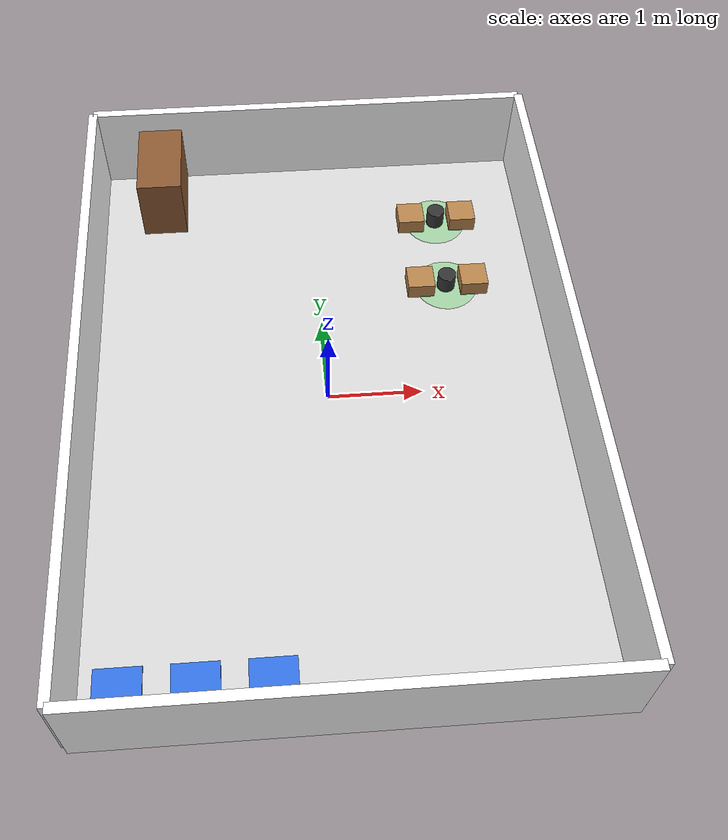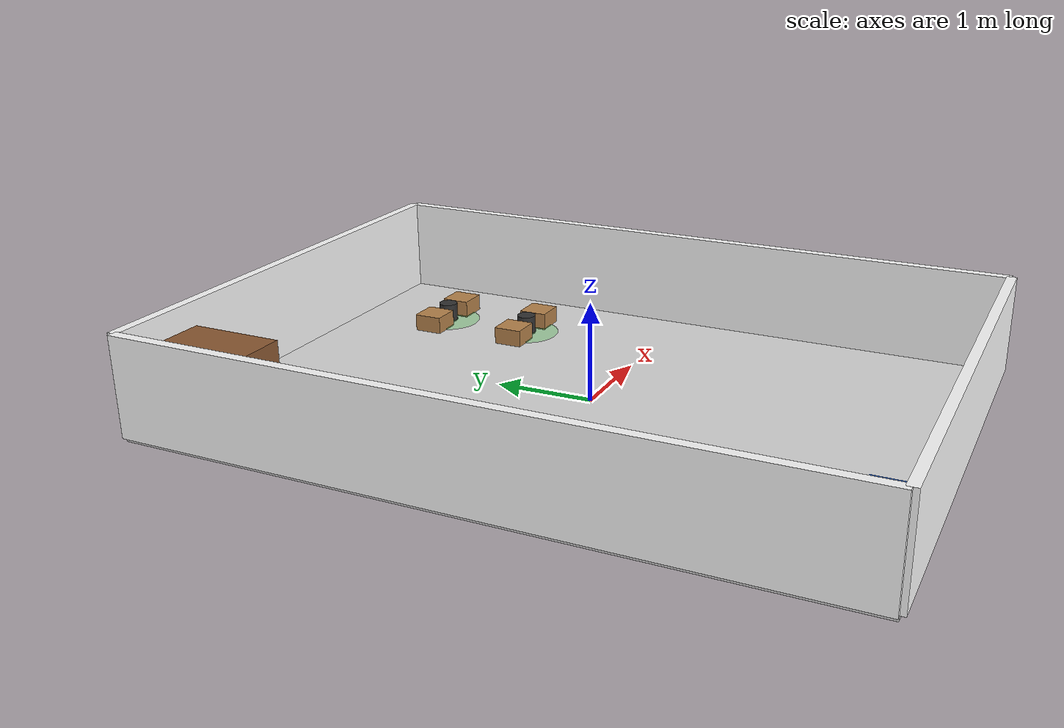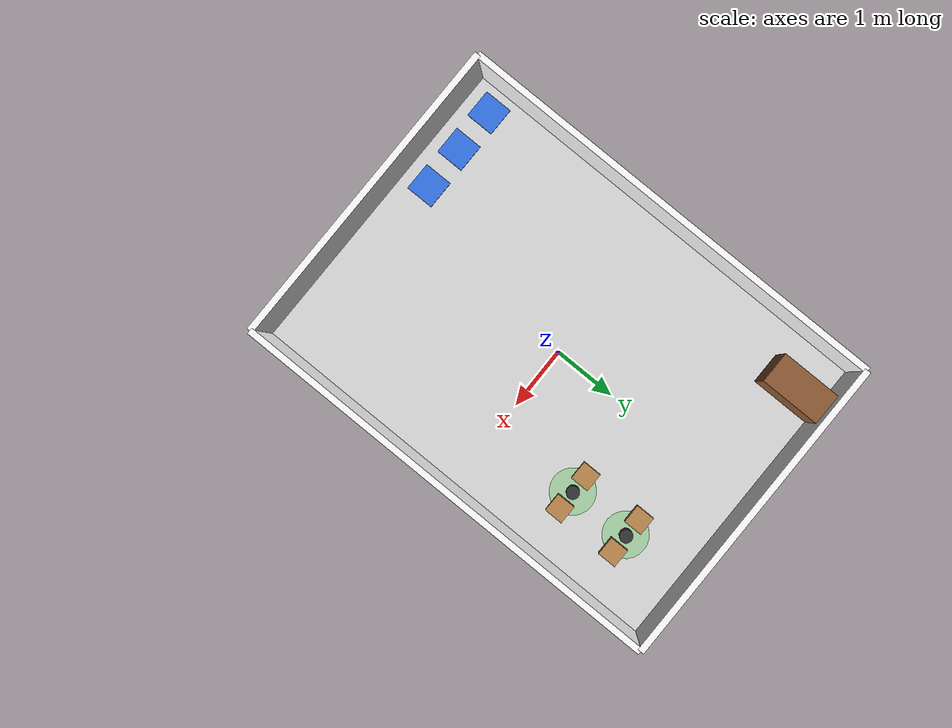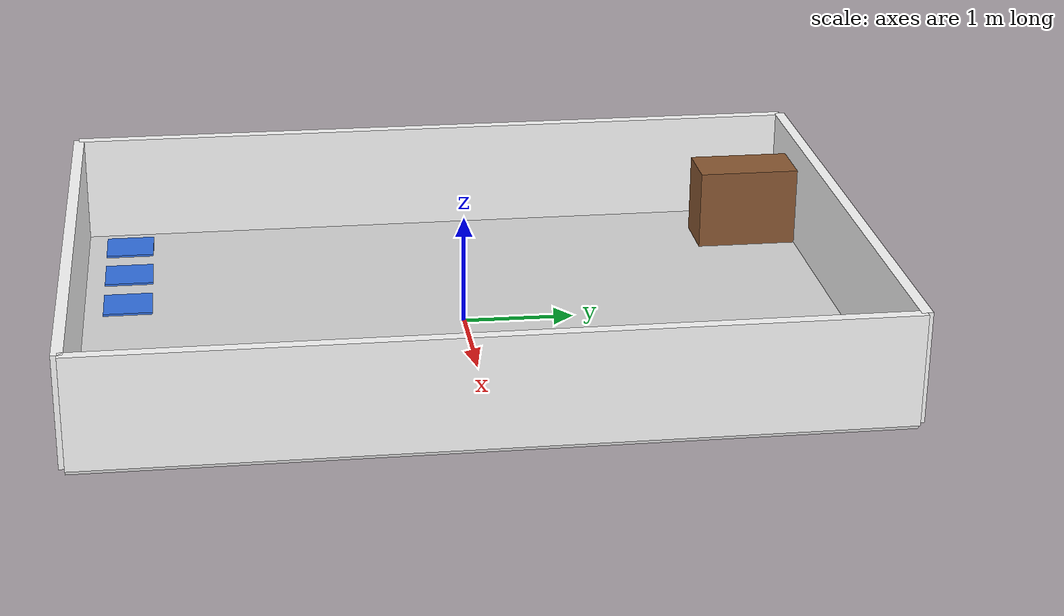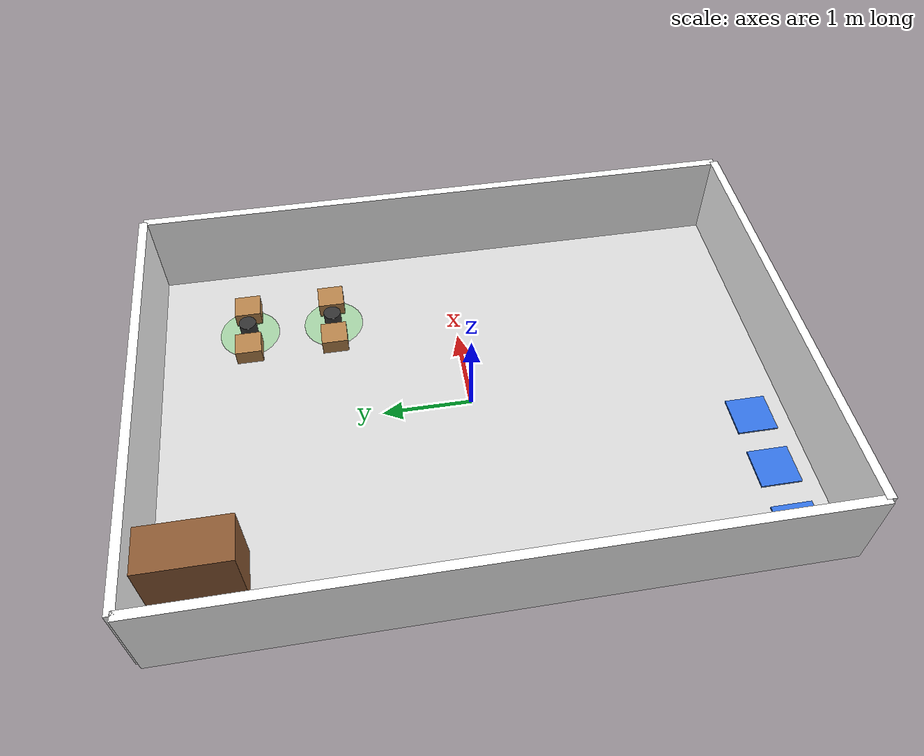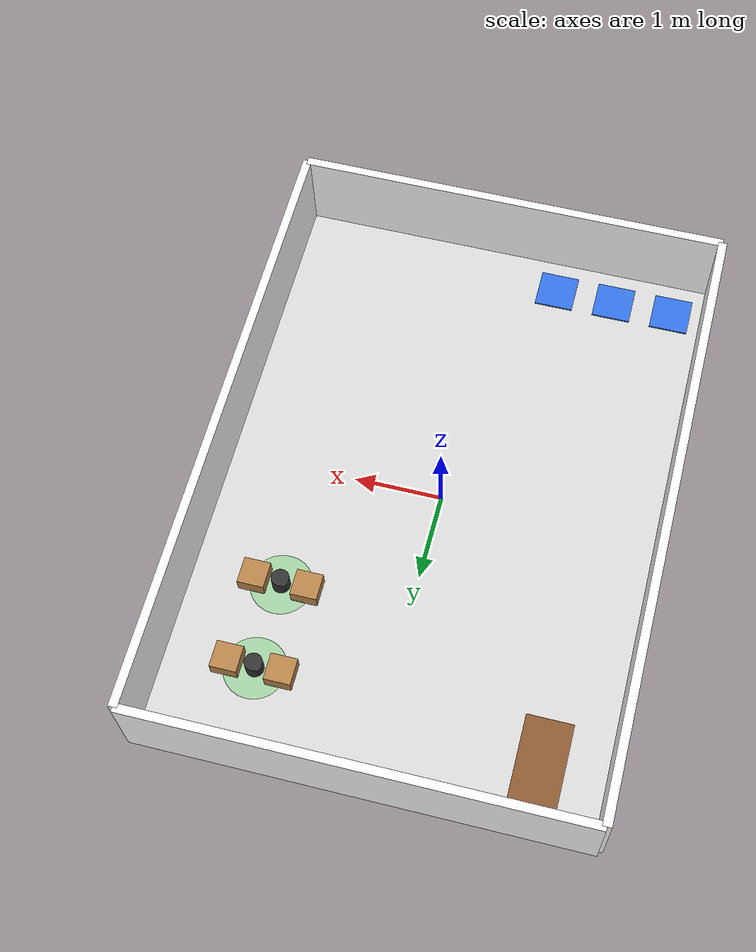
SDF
<?xml version="1.0" ?>
<sdf version="1.9">

  <world name="coupang_center">

    <physics name="1ms" type="ignored">
      <max_step_size>0.001</max_step_size>
      <real_time_factor>1.0</real_time_factor>
    </physics>

    <!-- Physics -->
    <plugin
      filename="gz-sim-physics-system"
      name="gz::sim::systems::Physics">
    </plugin>

    <!-- Gazebo 명령 처리 -->
    <plugin
      filename="gz-sim-user-commands-system"
      name="gz::sim::systems::UserCommands">
    </plugin>

    <!-- Gazebo 화면 / scene 정보 -->
    <plugin
      filename="gz-sim-scene-broadcaster-system"
      name="gz::sim::systems::SceneBroadcaster">
    </plugin>

    <!-- ★ LiDAR 등의 센서를 동작시키는 시스템 -->
    <plugin
      filename="gz-sim-sensors-system"
      name="gz::sim::systems::Sensors">
      <render_engine>ogre2</render_engine>
    </plugin>

    <!-- ★ IMU 센서를 동작시키는 시스템 -->
    <plugin
      filename="gz-sim-imu-system"
      name="gz::sim::systems::Imu">
    </plugin>

    <light type="directional" name="sun">
      <cast_shadows>true</cast_shadows>
      <pose>0 0 10 0 0 0</pose>
      <diffuse>0.9 0.9 0.9 1</diffuse>
      <specular>0.2 0.2 0.2 1</specular>
      <direction>-0.5 0.1 -0.9</direction>
    </light>

    <!-- Floor                     -->

    <model name="floor">
      <static>true</static>
      <pose>0.0 0.0 -0.025 0 0 0</pose>

      <link name="link">

        <visual name="visual">
          <geometry>
            <box>
              <size>5.0 7.0 0.05</size>
            </box>
          </geometry>

          <material>
            <ambient>0.85 0.85 0.85 1</ambient>
            <diffuse>0.85 0.85 0.85 1</diffuse>
            <specular>0.2 0.2 0.2 1</specular>
          </material>
        </visual>

        <collision name="collision">
          <geometry>
            <box>
              <size>5.0 7.0 0.05</size>
            </box>
          </geometry>
        </collision>

      </link>
    </model>

    <!-- Walls                     -->

    <model name="wall_north">
      <static>true</static>
      <pose>0.0 3.5 0.5 0 0 0</pose>

      <link name="link">

        <visual name="visual">
          <geometry>
            <box>
              <size>5.0 0.1 1.0</size>
            </box>
          </geometry>

          <material>
            <ambient>1 1 1 1</ambient>
            <diffuse>1 1 1 1</diffuse>
            <specular>0.2 0.2 0.2 1</specular>
          </material>
        </visual>

        <collision name="collision">
          <geometry>
            <box>
              <size>5.0 0.1 1.0</size>
            </box>
          </geometry>
        </collision>

      </link>
    </model>

    <model name="wall_south">
      <static>true</static>
      <pose>0.0 -3.5 0.5 0 0 0</pose>

      <link name="link">

        <visual name="visual">
          <geometry>
            <box>
              <size>5.0 0.1 1.0</size>
            </box>
          </geometry>

          <material>
            <ambient>1 1 1 1</ambient>
            <diffuse>1 1 1 1</diffuse>
            <specular>0.2 0.2 0.2 1</specular>
          </material>
        </visual>

        <collision name="collision">
          <geometry>
            <box>
              <size>5.0 0.1 1.0</size>
            </box>
          </geometry>
        </collision>

      </link>
    </model>

    <model name="wall_left">
      <static>true</static>
      <pose>-2.5 0.0 0.5 0 0 0</pose>

      <link name="link">

        <visual name="visual">
          <geometry>
            <box>
              <size>0.1 7.0 1.0</size>
            </box>
          </geometry>

          <material>
            <ambient>1 1 1 1</ambient>
            <diffuse>1 1 1 1</diffuse>
            <specular>0.2 0.2 0.2 1</specular>
          </material>
        </visual>

        <collision name="collision">
          <geometry>
            <box>
              <size>0.1 7.0 1.0</size>
            </box>
          </geometry>
        </collision>

      </link>
    </model>

    <model name="wall_right">
      <static>true</static>
      <pose>2.5 0.0 0.5 0 0 0</pose>

      <link name="link">

        <visual name="visual">
          <geometry>
            <box>
              <size>0.1 7.0 1.0</size>
            </box>
          </geometry>

          <material>
            <ambient>1 1 1 1</ambient>
            <diffuse>1 1 1 1</diffuse>
            <specular>0.2 0.2 0.2 1</specular>
          </material>
        </visual>

        <collision name="collision">
          <geometry>
            <box>
              <size>0.1 7.0 1.0</size>
            </box>
          </geometry>
        </collision>

      </link>
    </model>

    <!-- Work table                -->

    <model name="worktable_01">
      <static>true</static>
      <pose>-1.75 3.0 0.375 0 0 0</pose>

      <link name="link">

        <visual name="visual">
          <geometry>
            <box>
              <size>0.5 1.0 0.75</size>
            </box>
          </geometry>

          <material>
            <ambient>0.55 0.35 0.20 1</ambient>
            <diffuse>0.55 0.35 0.20 1</diffuse>
            <specular>0.2 0.2 0.2 1</specular>
          </material>
        </visual>

        <collision name="collision">
          <geometry>
            <box>
              <size>0.5 1.0 0.75</size>
            </box>
          </geometry>
        </collision>

      </link>
    </model>

    <!-- Docking Stations          -->

    <model name="dock_1">
      <static>true</static>
      <pose>-2.1 -3.05 0.01 0 0 0</pose>

      <link name="link">
        <visual name="visual">
          <geometry>
            <box>
              <size>0.45 0.45 0.02</size>
            </box>
          </geometry>

          <material>
            <ambient>0.20 0.45 0.90 1</ambient>
            <diffuse>0.20 0.45 0.90 1</diffuse>
            <specular>0.2 0.2 0.2 1</specular>
          </material>
        </visual>

        <collision name="collision">
          <geometry>
            <box>
              <size>0.45 0.45 0.02</size>
            </box>
          </geometry>
        </collision>
      </link>
    </model>

    <model name="dock_2">
      <static>true</static>
      <pose>-1.4 -3.05 0.01 0 0 0</pose>

      <link name="link">
        <visual name="visual">
          <geometry>
            <box>
              <size>0.45 0.45 0.02</size>
            </box>
          </geometry>

          <material>
            <ambient>0.20 0.45 0.90 1</ambient>
            <diffuse>0.20 0.45 0.90 1</diffuse>
            <specular>0.2 0.2 0.2 1</specular>
          </material>
        </visual>

        <collision name="collision">
          <geometry>
            <box>
              <size>0.45 0.45 0.02</size>
            </box>
          </geometry>
        </collision>
      </link>
    </model>

    <model name="dock_3">
      <static>true</static>
      <pose>-0.7 -3.05 0.01 0 0 0</pose>

      <link name="link">
        <visual name="visual">
          <geometry>
            <box>
              <size>0.45 0.45 0.02</size>
            </box>
          </geometry>

          <material>
            <ambient>0.20 0.45 0.90 1</ambient>
            <diffuse>0.20 0.45 0.90 1</diffuse>
            <specular>0.2 0.2 0.2 1</specular>
          </material>
        </visual>

        <collision name="collision">
          <geometry>
            <box>
              <size>0.45 0.45 0.02</size>
            </box>
          </geometry>
        </collision>
      </link>
    </model>

    <!-- Work Cell 1               -->

    <model name="pallet_1">
      <static>true</static>
      <pose>1.15 2.45 0.09 0 0 0</pose>

      <link name="link">
        <visual name="visual">
          <geometry>
            <box>
              <size>0.3 0.3 0.18</size>
            </box>
          </geometry>

          <material>
            <ambient>0.72 0.52 0.30 1</ambient>
            <diffuse>0.72 0.52 0.30 1</diffuse>
            <specular>0.2 0.2 0.2 1</specular>
          </material>
        </visual>

        <collision name="collision">
          <geometry>
            <box>
              <size>0.3 0.3 0.18</size>
            </box>
          </geometry>
        </collision>
      </link>
    </model>

    <model name="pallet_2">
      <static>true</static>
      <pose>1.75 2.45 0.09 0 0 0</pose>

      <link name="link">
        <visual name="visual">
          <geometry>
            <box>
              <size>0.3 0.3 0.18</size>
            </box>
          </geometry>

          <material>
            <ambient>0.72 0.52 0.30 1</ambient>
            <diffuse>0.72 0.52 0.30 1</diffuse>
            <specular>0.2 0.2 0.2 1</specular>
          </material>
        </visual>

        <collision name="collision">
          <geometry>
            <box>
              <size>0.3 0.3 0.18</size>
            </box>
          </geometry>
        </collision>
      </link>
    </model>

    <model name="arm_base_1">
      <static>true</static>
      <pose>1.45 2.45 0.1 0 0 0</pose>

      <link name="link">

        <visual name="visual">
          <geometry>
            <cylinder>
              <radius>0.1</radius>
              <length>0.2</length>
            </cylinder>
          </geometry>

          <material>
            <ambient>0.20 0.20 0.20 1</ambient>
            <diffuse>0.20 0.20 0.20 1</diffuse>
            <specular>0.2 0.2 0.2 1</specular>
          </material>
        </visual>

        <collision name="collision">
          <geometry>
            <cylinder>
              <radius>0.1</radius>
              <length>0.2</length>
            </cylinder>
          </geometry>
        </collision>

      </link>
    </model>

    <model name="arm_reach_1">
      <static>true</static>
      <pose>1.45 2.45 0.007 0 0 0</pose>

      <link name="link">

        <visual name="visual">
          <geometry>
            <cylinder>
              <radius>0.35</radius>
              <length>0.01</length>
            </cylinder>
          </geometry>

          <material>
            <ambient>0.30 0.80 0.30 0.35</ambient>
            <diffuse>0.30 0.80 0.30 0.35</diffuse>
            <specular>0.2 0.2 0.2 1</specular>
          </material>
        </visual>

      </link>
    </model>

    <!-- Work Cell 2               -->

    <model name="pallet_3">
      <static>true</static>
      <pose>1.15 1.45 0.09 0 0 0</pose>

      <link name="link">

        <visual name="visual">
          <geometry>
            <box>
              <size>0.3 0.3 0.18</size>
            </box>
          </geometry>

          <material>
            <ambient>0.72 0.52 0.30 1</ambient>
            <diffuse>0.72 0.52 0.30 1</diffuse>
            <specular>0.2 0.2 0.2 1</specular>
          </material>
        </visual>

        <collision name="collision">
          <geometry>
            <box>
              <size>0.3 0.3 0.18</size>
            </box>
          </geometry>
        </collision>

      </link>
    </model>

    <model name="pallet_4">
      <static>true</static>
      <pose>1.75 1.45 0.09 0 0 0</pose>

      <link name="link">

        <visual name="visual">
          <geometry>
            <box>
              <size>0.3 0.3 0.18</size>
            </box>
          </geometry>

          <material>
            <ambient>0.72 0.52 0.30 1</ambient>
            <diffuse>0.72 0.52 0.30 1</diffuse>
            <specular>0.2 0.2 0.2 1</specular>
          </material>
        </visual>

        <collision name="collision">
          <geometry>
            <box>
              <size>0.3 0.3 0.18</size>
            </box>
          </geometry>
        </collision>

      </link>
    </model>

    <model name="arm_base_2">
      <static>true</static>
      <pose>1.45 1.45 0.1 0 0 0</pose>

      <link name="link">

        <visual name="visual">
          <geometry>
            <cylinder>
              <radius>0.1</radius>
              <length>0.2</length>
            </cylinder>
          </geometry>

          <material>
            <ambient>0.20 0.20 0.20 1</ambient>
            <diffuse>0.20 0.20 0.20 1</diffuse>
            <specular>0.2 0.2 0.2 1</specular>
          </material>
        </visual>

        <collision name="collision">
          <geometry>
            <cylinder>
              <radius>0.1</radius>
              <length>0.2</length>
            </cylinder>
          </geometry>
        </collision>

      </link>
    </model>

    <model name="arm_reach_2">
      <static>true</static>
      <pose>1.45 1.45 0.007 0 0 0</pose>

      <link name="link">

        <visual name="visual">
          <geometry>
            <cylinder>
              <radius>0.35</radius>
              <length>0.01</length>
            </cylinder>
          </geometry>

          <material>
            <ambient>0.30 0.80 0.30 0.35</ambient>
            <diffuse>0.30 0.80 0.30 0.35</diffuse>
            <specular>0.2 0.2 0.2 1</specular>
          </material>
        </visual>

      </link>
    </model>

  </world>

</sdf>
